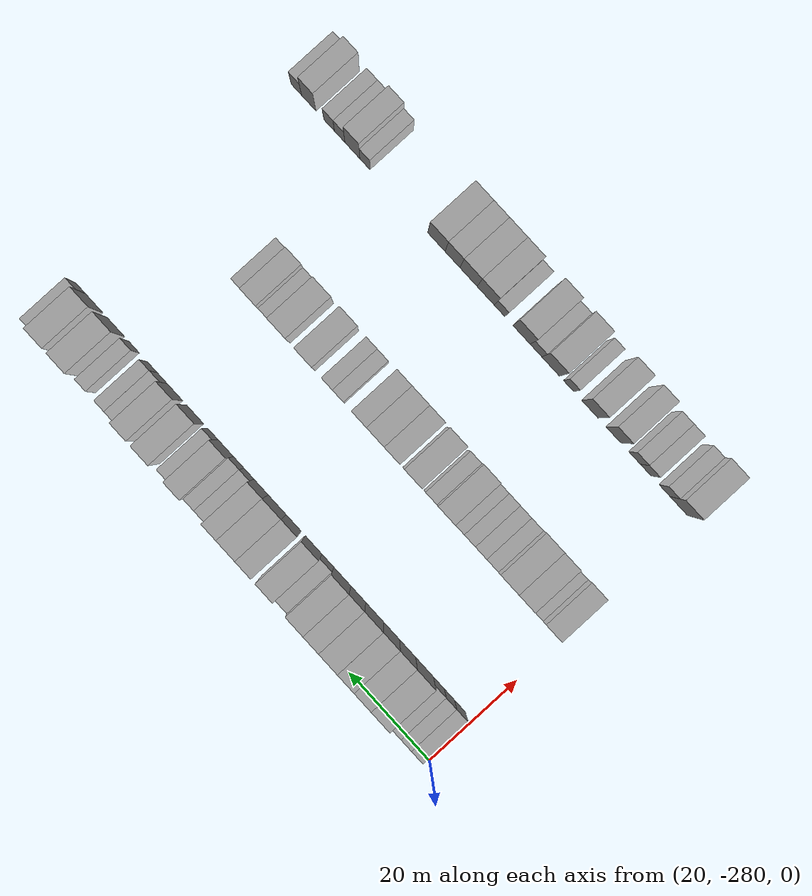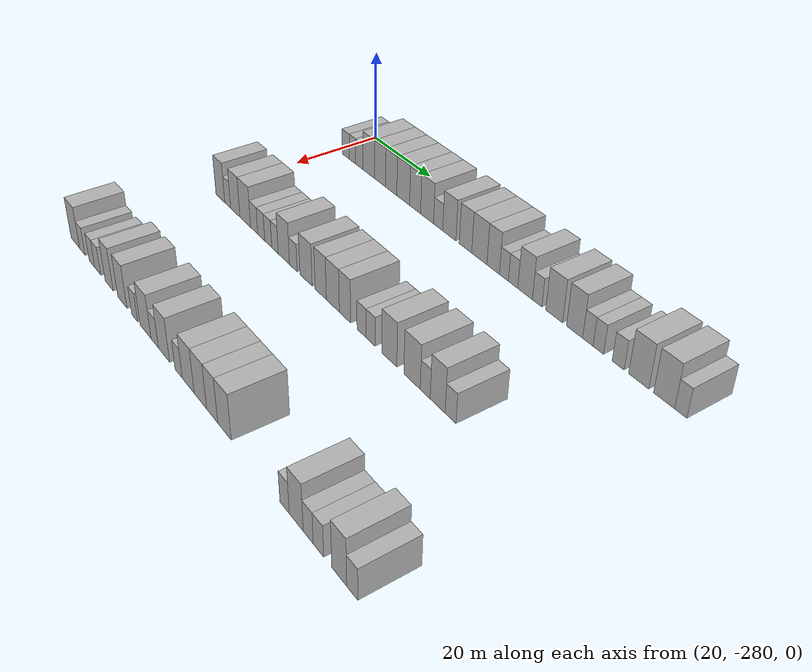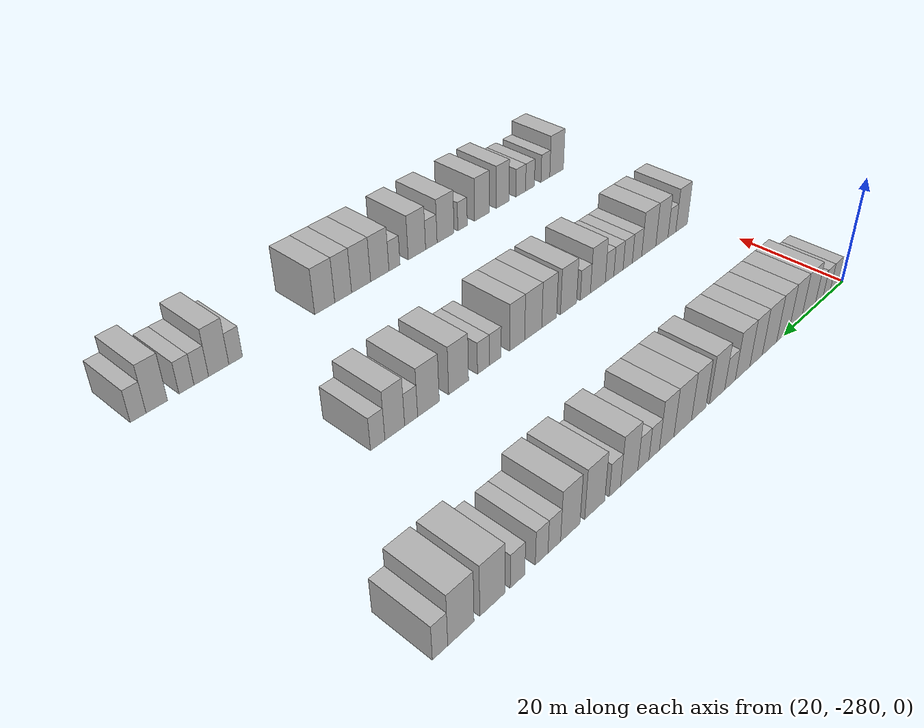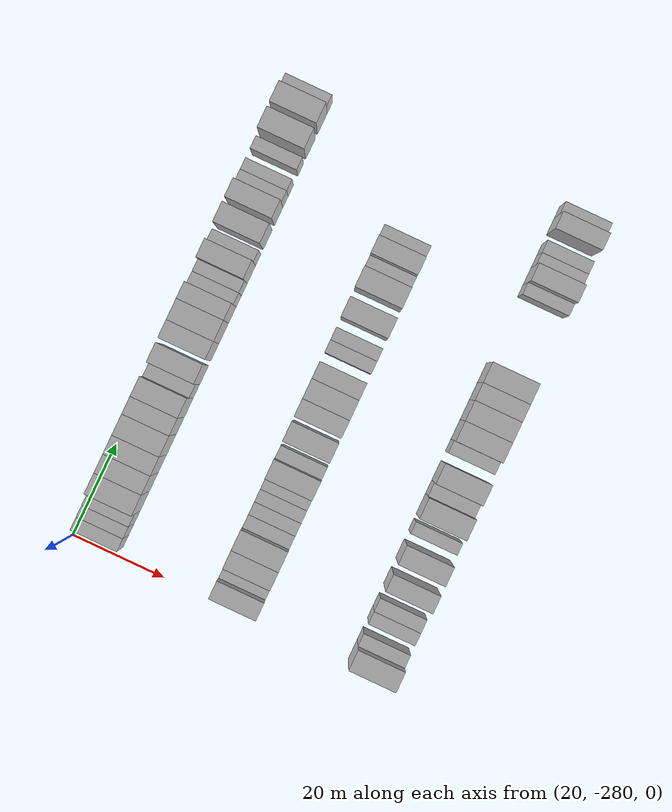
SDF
<sdf version="1.6">
 <world name="default">
  <model name="building_1">
   <static>1</static>
   <pose>25.0000 -276.6191 0 0.000000 0.000000 0.000000</pose>
   <link name="link">
    <pose>0 0 3.00 0 0 0</pose>
    <collision name="collision"><geometry><box><size>10.0000 2.7619 6.0000</size></box></geometry></collision>
    <visual name="visual">
     <cast_shadows>0</cast_shadows>
     <geometry><box><size>10.0000 2.7619 6.0000</size></box></geometry>
     <material>
      <script>
       <uri>model://HANNAS_wall/materials/scripts</uri>
       <uri>model://HANNAS_wall/materials/textures</uri>
       <name>vrc/HANNAS_wall</name>
      </script>
     </material>
    </visual>
   </link>
  </model>
  <model name="building_2">
   <static>1</static>
   <pose>25.0000 -273.9857 0 0.000000 0.000000 0.000000</pose>
   <link name="link">
    <pose>0 0 3.00 0 0 0</pose>
    <collision name="collision"><geometry><box><size>10.0000 2.5049 6.0000</size></box></geometry></collision>
    <visual name="visual">
     <cast_shadows>0</cast_shadows>
     <geometry><box><size>10.0000 2.5049 6.0000</size></box></geometry>
     <material>
      <script>
       <uri>model://HANNAS_wall/materials/scripts</uri>
       <uri>model://HANNAS_wall/materials/textures</uri>
       <name>vrc/HANNAS_wall</name>
      </script>
     </material>
    </visual>
   </link>
  </model>
  <model name="building_3">
   <static>1</static>
   <pose>25.0000 -271.3857 0 0.000000 0.000000 0.000000</pose>
   <link name="link">
    <pose>0 0 3.00 0 0 0</pose>
    <collision name="collision"><geometry><box><size>10.0000 2.6950 6.0000</size></box></geometry></collision>
    <visual name="visual">
     <cast_shadows>0</cast_shadows>
     <geometry><box><size>10.0000 2.6950 6.0000</size></box></geometry>
     <material>
      <script>
       <uri>model://HANNAS_wall/materials/scripts</uri>
       <uri>model://HANNAS_wall/materials/textures</uri>
       <name>vrc/HANNAS_wall</name>
      </script>
     </material>
    </visual>
   </link>
  </model>
  <model name="building_4">
   <static>1</static>
   <pose>25.0000 -267.8144 0 0.000000 0.000000 0.000000</pose>
   <link name="link">
    <pose>0 0 4.50 0 0 0</pose>
    <collision name="collision"><geometry><box><size>10.0000 4.4476 9.0000</size></box></geometry></collision>
    <visual name="visual">
     <cast_shadows>0</cast_shadows>
     <geometry><box><size>10.0000 4.4476 9.0000</size></box></geometry>
     <material>
      <script>
       <uri>model://HANNAS_wall/materials/scripts</uri>
       <uri>model://HANNAS_wall/materials/textures</uri>
       <name>vrc/HANNAS_wall</name>
      </script>
     </material>
    </visual>
   </link>
  </model>
  <model name="building_5">
   <static>1</static>
   <pose>25.0000 -263.5804 0 0.000000 0.000000 0.000000</pose>
   <link name="link">
    <pose>0 0 4.50 0 0 0</pose>
    <collision name="collision"><geometry><box><size>10.0000 4.0205 9.0000</size></box></geometry></collision>
    <visual name="visual">
     <cast_shadows>0</cast_shadows>
     <geometry><box><size>10.0000 4.0205 9.0000</size></box></geometry>
     <material>
      <script>
       <uri>model://HANNAS_wall/materials/scripts</uri>
       <uri>model://HANNAS_wall/materials/textures</uri>
       <name>vrc/HANNAS_wall</name>
      </script>
     </material>
    </visual>
   </link>
  </model>
  <model name="building_6">
   <static>1</static>
   <pose>25.0000 -259.5754 0 0.000000 0.000000 0.000000</pose>
   <link name="link">
    <pose>0 0 4.50 0 0 0</pose>
    <collision name="collision"><geometry><box><size>10.0000 3.9895 9.0000</size></box></geometry></collision>
    <visual name="visual">
     <cast_shadows>0</cast_shadows>
     <geometry><box><size>10.0000 3.9895 9.0000</size></box></geometry>
     <material>
      <script>
       <uri>model://HANNAS_wall/materials/scripts</uri>
       <uri>model://HANNAS_wall/materials/textures</uri>
       <name>vrc/HANNAS_wall</name>
      </script>
     </material>
    </visual>
   </link>
  </model>
  <model name="building_7">
   <static>1</static>
   <pose>25.0000 -255.3497 0 0.000000 0.000000 0.000000</pose>
   <link name="link">
    <pose>0 0 4.50 0 0 0</pose>
    <collision name="collision"><geometry><box><size>10.0000 4.4617 9.0000</size></box></geometry></collision>
    <visual name="visual">
     <cast_shadows>0</cast_shadows>
     <geometry><box><size>10.0000 4.4617 9.0000</size></box></geometry>
     <material>
      <script>
       <uri>model://HANNAS_wall/materials/scripts</uri>
       <uri>model://HANNAS_wall/materials/textures</uri>
       <name>vrc/HANNAS_wall</name>
      </script>
     </material>
    </visual>
   </link>
  </model>
  <model name="building_8">
   <static>1</static>
   <pose>25.0000 -251.2563 0 0.000000 0.000000 0.000000</pose>
   <link name="link">
    <pose>0 0 4.50 0 0 0</pose>
    <collision name="collision"><geometry><box><size>10.0000 3.7250 9.0000</size></box></geometry></collision>
    <visual name="visual">
     <cast_shadows>0</cast_shadows>
     <geometry><box><size>10.0000 3.7250 9.0000</size></box></geometry>
     <material>
      <script>
       <uri>model://HANNAS_wall/materials/scripts</uri>
       <uri>model://HANNAS_wall/materials/textures</uri>
       <name>vrc/HANNAS_wall</name>
      </script>
     </material>
    </visual>
   </link>
  </model>
  <model name="building_9">
   <static>1</static>
   <pose>25.0000 -247.2740 0 0.000000 0.000000 0.000000</pose>
   <link name="link">
    <pose>0 0 4.50 0 0 0</pose>
    <collision name="collision"><geometry><box><size>10.0000 4.2396 9.0000</size></box></geometry></collision>
    <visual name="visual">
     <cast_shadows>0</cast_shadows>
     <geometry><box><size>10.0000 4.2396 9.0000</size></box></geometry>
     <material>
      <script>
       <uri>model://HANNAS_wall/materials/scripts</uri>
       <uri>model://HANNAS_wall/materials/textures</uri>
       <name>vrc/HANNAS_wall</name>
      </script>
     </material>
    </visual>
   </link>
  </model>
  <model name="building_10">
   <static>1</static>
   <pose>25.0000 -243.6622 0 0.000000 0.000000 0.000000</pose>
   <link name="link">
    <pose>0 0 3.00 0 0 0</pose>
    <collision name="collision"><geometry><box><size>10.0000 2.9841 6.0000</size></box></geometry></collision>
    <visual name="visual">
     <cast_shadows>0</cast_shadows>
     <geometry><box><size>10.0000 2.9841 6.0000</size></box></geometry>
     <material>
      <script>
       <uri>model://HANNAS_wall/materials/scripts</uri>
       <uri>model://HANNAS_wall/materials/textures</uri>
       <name>vrc/HANNAS_wall</name>
      </script>
     </material>
    </visual>
   </link>
  </model>
  <model name="building_11">
   <static>1</static>
   <pose>25.0000 -240.0857 0 0.000000 0.000000 0.000000</pose>
   <link name="link">
    <pose>0 0 4.50 0 0 0</pose>
    <collision name="collision"><geometry><box><size>10.0000 4.1688 9.0000</size></box></geometry></collision>
    <visual name="visual">
     <cast_shadows>0</cast_shadows>
     <geometry><box><size>10.0000 4.1688 9.0000</size></box></geometry>
     <material>
      <script>
       <uri>model://HANNAS_wall/materials/scripts</uri>
       <uri>model://HANNAS_wall/materials/textures</uri>
       <name>vrc/HANNAS_wall</name>
      </script>
     </material>
    </visual>
   </link>
  </model>
  <model name="building_12">
   <static>1</static>
   <pose>25.0000 -235.0890 0 0.000000 0.000000 0.000000</pose>
   <link name="link">
    <pose>0 0 4.50 0 0 0</pose>
    <collision name="collision"><geometry><box><size>10.0000 3.8247 9.0000</size></box></geometry></collision>
    <visual name="visual">
     <cast_shadows>0</cast_shadows>
     <geometry><box><size>10.0000 3.8247 9.0000</size></box></geometry>
     <material>
      <script>
       <uri>model://HANNAS_wall/materials/scripts</uri>
       <uri>model://HANNAS_wall/materials/textures</uri>
       <name>vrc/HANNAS_wall</name>
      </script>
     </material>
    </visual>
   </link>
  </model>
  <model name="building_13">
   <static>1</static>
   <pose>25.0000 -230.9289 0 0.000000 0.000000 0.000000</pose>
   <link name="link">
    <pose>0 0 4.50 0 0 0</pose>
    <collision name="collision"><geometry><box><size>10.0000 4.4953 9.0000</size></box></geometry></collision>
    <visual name="visual">
     <cast_shadows>0</cast_shadows>
     <geometry><box><size>10.0000 4.4953 9.0000</size></box></geometry>
     <material>
      <script>
       <uri>model://HANNAS_wall/materials/scripts</uri>
       <uri>model://HANNAS_wall/materials/textures</uri>
       <name>vrc/HANNAS_wall</name>
      </script>
     </material>
    </visual>
   </link>
  </model>
  <model name="building_14">
   <static>1</static>
   <pose>25.0000 -226.8792 0 0.000000 0.000000 0.000000</pose>
   <link name="link">
    <pose>0 0 4.50 0 0 0</pose>
    <collision name="collision"><geometry><box><size>10.0000 3.6042 9.0000</size></box></geometry></collision>
    <visual name="visual">
     <cast_shadows>0</cast_shadows>
     <geometry><box><size>10.0000 3.6042 9.0000</size></box></geometry>
     <material>
      <script>
       <uri>model://HANNAS_wall/materials/scripts</uri>
       <uri>model://HANNAS_wall/materials/textures</uri>
       <name>vrc/HANNAS_wall</name>
      </script>
     </material>
    </visual>
   </link>
  </model>
  <model name="building_15">
   <static>1</static>
   <pose>25.0000 -223.8121 0 0.000000 0.000000 0.000000</pose>
   <link name="link">
    <pose>0 0 3.00 0 0 0</pose>
    <collision name="collision"><geometry><box><size>10.0000 2.5299 6.0000</size></box></geometry></collision>
    <visual name="visual">
     <cast_shadows>0</cast_shadows>
     <geometry><box><size>10.0000 2.5299 6.0000</size></box></geometry>
     <material>
      <script>
       <uri>model://HANNAS_wall/materials/scripts</uri>
       <uri>model://HANNAS_wall/materials/textures</uri>
       <name>vrc/HANNAS_wall</name>
      </script>
     </material>
    </visual>
   </link>
  </model>
  <model name="building_16">
   <static>1</static>
   <pose>25.0000 -221.2424 0 0.000000 0.000000 0.000000</pose>
   <link name="link">
    <pose>0 0 3.00 0 0 0</pose>
    <collision name="collision"><geometry><box><size>10.0000 2.6094 6.0000</size></box></geometry></collision>
    <visual name="visual">
     <cast_shadows>0</cast_shadows>
     <geometry><box><size>10.0000 2.6094 6.0000</size></box></geometry>
     <material>
      <script>
       <uri>model://HANNAS_wall/materials/scripts</uri>
       <uri>model://HANNAS_wall/materials/textures</uri>
       <name>vrc/HANNAS_wall</name>
      </script>
     </material>
    </visual>
   </link>
  </model>
  <model name="building_17">
   <static>1</static>
   <pose>25.0000 -217.9524 0 0.000000 0.000000 0.000000</pose>
   <link name="link">
    <pose>0 0 4.50 0 0 0</pose>
    <collision name="collision"><geometry><box><size>10.0000 3.9706 9.0000</size></box></geometry></collision>
    <visual name="visual">
     <cast_shadows>0</cast_shadows>
     <geometry><box><size>10.0000 3.9706 9.0000</size></box></geometry>
     <material>
      <script>
       <uri>model://HANNAS_wall/materials/scripts</uri>
       <uri>model://HANNAS_wall/materials/textures</uri>
       <name>vrc/HANNAS_wall</name>
      </script>
     </material>
    </visual>
   </link>
  </model>
  <model name="building_18">
   <static>1</static>
   <pose>25.0000 -214.6988 0 0.000000 0.000000 0.000000</pose>
   <link name="link">
    <pose>0 0 3.00 0 0 0</pose>
    <collision name="collision"><geometry><box><size>10.0000 2.5365 6.0000</size></box></geometry></collision>
    <visual name="visual">
     <cast_shadows>0</cast_shadows>
     <geometry><box><size>10.0000 2.5365 6.0000</size></box></geometry>
     <material>
      <script>
       <uri>model://HANNAS_wall/materials/scripts</uri>
       <uri>model://HANNAS_wall/materials/textures</uri>
       <name>vrc/HANNAS_wall</name>
      </script>
     </material>
    </visual>
   </link>
  </model>
  <model name="building_19">
   <static>1</static>
   <pose>25.0000 -210.2772 0 0.000000 0.000000 0.000000</pose>
   <link name="link">
    <pose>0 0 4.50 0 0 0</pose>
    <collision name="collision"><geometry><box><size>10.0000 4.3068 9.0000</size></box></geometry></collision>
    <visual name="visual">
     <cast_shadows>0</cast_shadows>
     <geometry><box><size>10.0000 4.3068 9.0000</size></box></geometry>
     <material>
      <script>
       <uri>model://HANNAS_wall/materials/scripts</uri>
       <uri>model://HANNAS_wall/materials/textures</uri>
       <name>vrc/HANNAS_wall</name>
      </script>
     </material>
    </visual>
   </link>
  </model>
  <model name="building_20">
   <static>1</static>
   <pose>25.0000 -205.1337 0 0.000000 0.000000 0.000000</pose>
   <link name="link">
    <pose>0 0 4.50 0 0 0</pose>
    <collision name="collision"><geometry><box><size>10.0000 3.9800 9.0000</size></box></geometry></collision>
    <visual name="visual">
     <cast_shadows>0</cast_shadows>
     <geometry><box><size>10.0000 3.9800 9.0000</size></box></geometry>
     <material>
      <script>
       <uri>model://HANNAS_wall/materials/scripts</uri>
       <uri>model://HANNAS_wall/materials/textures</uri>
       <name>vrc/HANNAS_wall</name>
      </script>
     </material>
    </visual>
   </link>
  </model>
  <model name="building_21">
   <static>1</static>
   <pose>25.0000 -201.8818 0 0.000000 0.000000 0.000000</pose>
   <link name="link">
    <pose>0 0 3.00 0 0 0</pose>
    <collision name="collision"><geometry><box><size>10.0000 2.5238 6.0000</size></box></geometry></collision>
    <visual name="visual">
     <cast_shadows>0</cast_shadows>
     <geometry><box><size>10.0000 2.5238 6.0000</size></box></geometry>
     <material>
      <script>
       <uri>model://HANNAS_wall/materials/scripts</uri>
       <uri>model://HANNAS_wall/materials/textures</uri>
       <name>vrc/HANNAS_wall</name>
      </script>
     </material>
    </visual>
   </link>
  </model>
  <model name="building_22">
   <static>1</static>
   <pose>25.0000 -199.3807 0 0.000000 0.000000 0.000000</pose>
   <link name="link">
    <pose>0 0 3.00 0 0 0</pose>
    <collision name="collision"><geometry><box><size>10.0000 2.4783 6.0000</size></box></geometry></collision>
    <visual name="visual">
     <cast_shadows>0</cast_shadows>
     <geometry><box><size>10.0000 2.4783 6.0000</size></box></geometry>
     <material>
      <script>
       <uri>model://HANNAS_wall/materials/scripts</uri>
       <uri>model://HANNAS_wall/materials/textures</uri>
       <name>vrc/HANNAS_wall</name>
      </script>
     </material>
    </visual>
   </link>
  </model>
  <model name="building_23">
   <static>1</static>
   <pose>25.0000 -194.7735 0 0.000000 0.000000 0.000000</pose>
   <link name="link">
    <pose>0 0 3.00 0 0 0</pose>
    <collision name="collision"><geometry><box><size>10.0000 2.7361 6.0000</size></box></geometry></collision>
    <visual name="visual">
     <cast_shadows>0</cast_shadows>
     <geometry><box><size>10.0000 2.7361 6.0000</size></box></geometry>
     <material>
      <script>
       <uri>model://HANNAS_wall/materials/scripts</uri>
       <uri>model://HANNAS_wall/materials/textures</uri>
       <name>vrc/HANNAS_wall</name>
      </script>
     </material>
    </visual>
   </link>
  </model>
  <model name="building_24">
   <static>1</static>
   <pose>25.0000 -190.1663 0 0.000000 0.000000 0.000000</pose>
   <link name="link">
    <pose>0 0 4.50 0 0 0</pose>
    <collision name="collision"><geometry><box><size>10.0000 4.4783 9.0000</size></box></geometry></collision>
    <visual name="visual">
     <cast_shadows>0</cast_shadows>
     <geometry><box><size>10.0000 4.4783 9.0000</size></box></geometry>
     <material>
      <script>
       <uri>model://HANNAS_wall/materials/scripts</uri>
       <uri>model://HANNAS_wall/materials/textures</uri>
       <name>vrc/HANNAS_wall</name>
      </script>
     </material>
    </visual>
   </link>
  </model>
  <model name="building_25">
   <static>1</static>
   <pose>25.0000 -184.7022 0 0.000000 0.000000 0.000000</pose>
   <link name="link">
    <pose>0 0 4.50 0 0 0</pose>
    <collision name="collision"><geometry><box><size>10.0000 4.4500 9.0000</size></box></geometry></collision>
    <visual name="visual">
     <cast_shadows>0</cast_shadows>
     <geometry><box><size>10.0000 4.4500 9.0000</size></box></geometry>
     <material>
      <script>
       <uri>model://HANNAS_wall/materials/scripts</uri>
       <uri>model://HANNAS_wall/materials/textures</uri>
       <name>vrc/HANNAS_wall</name>
      </script>
     </material>
    </visual>
   </link>
  </model>
  <model name="building_26">
   <static>1</static>
   <pose>25.0000 -181.2104 0 0.000000 0.000000 0.000000</pose>
   <link name="link">
    <pose>0 0 3.00 0 0 0</pose>
    <collision name="collision"><geometry><box><size>10.0000 2.5336 6.0000</size></box></geometry></collision>
    <visual name="visual">
     <cast_shadows>0</cast_shadows>
     <geometry><box><size>10.0000 2.5336 6.0000</size></box></geometry>
     <material>
      <script>
       <uri>model://HANNAS_wall/materials/scripts</uri>
       <uri>model://HANNAS_wall/materials/textures</uri>
       <name>vrc/HANNAS_wall</name>
      </script>
     </material>
    </visual>
   </link>
  </model>
  <model name="building_139">
   <static>1</static>
   <pose>55.0000 -276.0999 0 0.000000 0.000000 0.000000</pose>
   <link name="link">
    <pose>0 0 4.50 0 0 0</pose>
    <collision name="collision"><geometry><box><size>10.0000 3.8002 9.0000</size></box></geometry></collision>
    <visual name="visual">
     <cast_shadows>0</cast_shadows>
     <geometry><box><size>10.0000 3.8002 9.0000</size></box></geometry>
     <material>
      <script>
       <uri>model://HANNAS_wall/materials/scripts</uri>
       <uri>model://HANNAS_wall/materials/textures</uri>
       <name>vrc/HANNAS_wall</name>
      </script>
     </material>
    </visual>
   </link>
  </model>
  <model name="building_140">
   <static>1</static>
   <pose>55.0000 -272.9406 0 0.000000 0.000000 0.000000</pose>
   <link name="link">
    <pose>0 0 3.00 0 0 0</pose>
    <collision name="collision"><geometry><box><size>10.0000 2.5184 6.0000</size></box></geometry></collision>
    <visual name="visual">
     <cast_shadows>0</cast_shadows>
     <geometry><box><size>10.0000 2.5184 6.0000</size></box></geometry>
     <material>
      <script>
       <uri>model://HANNAS_wall/materials/scripts</uri>
       <uri>model://HANNAS_wall/materials/textures</uri>
       <name>vrc/HANNAS_wall</name>
      </script>
     </material>
    </visual>
   </link>
  </model>
  <model name="building_141">
   <static>1</static>
   <pose>55.0000 -269.7502 0 0.000000 0.000000 0.000000</pose>
   <link name="link">
    <pose>0 0 4.50 0 0 0</pose>
    <collision name="collision"><geometry><box><size>10.0000 3.8624 9.0000</size></box></geometry></collision>
    <visual name="visual">
     <cast_shadows>0</cast_shadows>
     <geometry><box><size>10.0000 3.8624 9.0000</size></box></geometry>
     <material>
      <script>
       <uri>model://HANNAS_wall/materials/scripts</uri>
       <uri>model://HANNAS_wall/materials/textures</uri>
       <name>vrc/HANNAS_wall</name>
      </script>
     </material>
    </visual>
   </link>
  </model>
  <model name="building_142">
   <static>1</static>
   <pose>55.0000 -265.6388 0 0.000000 0.000000 0.000000</pose>
   <link name="link">
    <pose>0 0 4.50 0 0 0</pose>
    <collision name="collision"><geometry><box><size>10.0000 4.3603 9.0000</size></box></geometry></collision>
    <visual name="visual">
     <cast_shadows>0</cast_shadows>
     <geometry><box><size>10.0000 4.3603 9.0000</size></box></geometry>
     <material>
      <script>
       <uri>model://HANNAS_wall/materials/scripts</uri>
       <uri>model://HANNAS_wall/materials/textures</uri>
       <name>vrc/HANNAS_wall</name>
      </script>
     </material>
    </visual>
   </link>
  </model>
  <model name="building_143">
   <static>1</static>
   <pose>55.0000 -262.0458 0 0.000000 0.000000 0.000000</pose>
   <link name="link">
    <pose>0 0 3.00 0 0 0</pose>
    <collision name="collision"><geometry><box><size>10.0000 2.8257 6.0000</size></box></geometry></collision>
    <visual name="visual">
     <cast_shadows>0</cast_shadows>
     <geometry><box><size>10.0000 2.8257 6.0000</size></box></geometry>
     <material>
      <script>
       <uri>model://HANNAS_wall/materials/scripts</uri>
       <uri>model://HANNAS_wall/materials/textures</uri>
       <name>vrc/HANNAS_wall</name>
      </script>
     </material>
    </visual>
   </link>
  </model>
  <model name="building_144">
   <static>1</static>
   <pose>55.0000 -259.2660 0 0.000000 0.000000 0.000000</pose>
   <link name="link">
    <pose>0 0 3.00 0 0 0</pose>
    <collision name="collision"><geometry><box><size>10.0000 2.7339 6.0000</size></box></geometry></collision>
    <visual name="visual">
     <cast_shadows>0</cast_shadows>
     <geometry><box><size>10.0000 2.7339 6.0000</size></box></geometry>
     <material>
      <script>
       <uri>model://HANNAS_wall/materials/scripts</uri>
       <uri>model://HANNAS_wall/materials/textures</uri>
       <name>vrc/HANNAS_wall</name>
      </script>
     </material>
    </visual>
   </link>
  </model>
  <model name="building_145">
   <static>1</static>
   <pose>55.0000 -256.5520 0 0.000000 0.000000 0.000000</pose>
   <link name="link">
    <pose>0 0 3.00 0 0 0</pose>
    <collision name="collision"><geometry><box><size>10.0000 2.6941 6.0000</size></box></geometry></collision>
    <visual name="visual">
     <cast_shadows>0</cast_shadows>
     <geometry><box><size>10.0000 2.6941 6.0000</size></box></geometry>
     <material>
      <script>
       <uri>model://HANNAS_wall/materials/scripts</uri>
       <uri>model://HANNAS_wall/materials/textures</uri>
       <name>vrc/HANNAS_wall</name>
      </script>
     </material>
    </visual>
   </link>
  </model>
  <model name="building_146">
   <static>1</static>
   <pose>55.0000 -253.9831 0 0.000000 0.000000 0.000000</pose>
   <link name="link">
    <pose>0 0 3.00 0 0 0</pose>
    <collision name="collision"><geometry><box><size>10.0000 2.4437 6.0000</size></box></geometry></collision>
    <visual name="visual">
     <cast_shadows>0</cast_shadows>
     <geometry><box><size>10.0000 2.4437 6.0000</size></box></geometry>
     <material>
      <script>
       <uri>model://HANNAS_wall/materials/scripts</uri>
       <uri>model://HANNAS_wall/materials/textures</uri>
       <name>vrc/HANNAS_wall</name>
      </script>
     </material>
    </visual>
   </link>
  </model>
  <model name="building_147">
   <static>1</static>
   <pose>55.0000 -250.6899 0 0.000000 0.000000 0.000000</pose>
   <link name="link">
    <pose>0 0 4.50 0 0 0</pose>
    <collision name="collision"><geometry><box><size>10.0000 4.1426 9.0000</size></box></geometry></collision>
    <visual name="visual">
     <cast_shadows>0</cast_shadows>
     <geometry><box><size>10.0000 4.1426 9.0000</size></box></geometry>
     <material>
      <script>
       <uri>model://HANNAS_wall/materials/scripts</uri>
       <uri>model://HANNAS_wall/materials/textures</uri>
       <name>vrc/HANNAS_wall</name>
      </script>
     </material>
    </visual>
   </link>
  </model>
  <model name="building_148">
   <static>1</static>
   <pose>55.0000 -247.2332 0 0.000000 0.000000 0.000000</pose>
   <link name="link">
    <pose>0 0 3.00 0 0 0</pose>
    <collision name="collision"><geometry><box><size>10.0000 2.7710 6.0000</size></box></geometry></collision>
    <visual name="visual">
     <cast_shadows>0</cast_shadows>
     <geometry><box><size>10.0000 2.7710 6.0000</size></box></geometry>
     <material>
      <script>
       <uri>model://HANNAS_wall/materials/scripts</uri>
       <uri>model://HANNAS_wall/materials/textures</uri>
       <name>vrc/HANNAS_wall</name>
      </script>
     </material>
    </visual>
   </link>
  </model>
  <model name="building_149">
   <static>1</static>
   <pose>55.0000 -242.7123 0 0.000000 0.000000 0.000000</pose>
   <link name="link">
    <pose>0 0 4.50 0 0 0</pose>
    <collision name="collision"><geometry><box><size>10.0000 4.2707 9.0000</size></box></geometry></collision>
    <visual name="visual">
     <cast_shadows>0</cast_shadows>
     <geometry><box><size>10.0000 4.2707 9.0000</size></box></geometry>
     <material>
      <script>
       <uri>model://HANNAS_wall/materials/scripts</uri>
       <uri>model://HANNAS_wall/materials/textures</uri>
       <name>vrc/HANNAS_wall</name>
      </script>
     </material>
    </visual>
   </link>
  </model>
  <model name="building_150">
   <static>1</static>
   <pose>55.0000 -237.6857 0 0.000000 0.000000 0.000000</pose>
   <link name="link">
    <pose>0 0 4.50 0 0 0</pose>
    <collision name="collision"><geometry><box><size>10.0000 3.7826 9.0000</size></box></geometry></collision>
    <visual name="visual">
     <cast_shadows>0</cast_shadows>
     <geometry><box><size>10.0000 3.7826 9.0000</size></box></geometry>
     <material>
      <script>
       <uri>model://HANNAS_wall/materials/scripts</uri>
       <uri>model://HANNAS_wall/materials/textures</uri>
       <name>vrc/HANNAS_wall</name>
      </script>
     </material>
    </visual>
   </link>
  </model>
  <model name="building_151">
   <static>1</static>
   <pose>55.0000 -233.6688 0 0.000000 0.000000 0.000000</pose>
   <link name="link">
    <pose>0 0 4.50 0 0 0</pose>
    <collision name="collision"><geometry><box><size>10.0000 4.2512 9.0000</size></box></geometry></collision>
    <visual name="visual">
     <cast_shadows>0</cast_shadows>
     <geometry><box><size>10.0000 4.2512 9.0000</size></box></geometry>
     <material>
      <script>
       <uri>model://HANNAS_wall/materials/scripts</uri>
       <uri>model://HANNAS_wall/materials/textures</uri>
       <name>vrc/HANNAS_wall</name>
      </script>
     </material>
    </visual>
   </link>
  </model>
  <model name="building_152">
   <static>1</static>
   <pose>55.0000 -229.7374 0 0.000000 0.000000 0.000000</pose>
   <link name="link">
    <pose>0 0 4.50 0 0 0</pose>
    <collision name="collision"><geometry><box><size>10.0000 3.6117 9.0000</size></box></geometry></collision>
    <visual name="visual">
     <cast_shadows>0</cast_shadows>
     <geometry><box><size>10.0000 3.6117 9.0000</size></box></geometry>
     <material>
      <script>
       <uri>model://HANNAS_wall/materials/scripts</uri>
       <uri>model://HANNAS_wall/materials/textures</uri>
       <name>vrc/HANNAS_wall</name>
      </script>
     </material>
    </visual>
   </link>
  </model>
  <model name="building_153">
   <static>1</static>
   <pose>55.0000 -224.5654 0 0.000000 0.000000 0.000000</pose>
   <link name="link">
    <pose>0 0 3.00 0 0 0</pose>
    <collision name="collision"><geometry><box><size>10.0000 2.7323 6.0000</size></box></geometry></collision>
    <visual name="visual">
     <cast_shadows>0</cast_shadows>
     <geometry><box><size>10.0000 2.7323 6.0000</size></box></geometry>
     <material>
      <script>
       <uri>model://HANNAS_wall/materials/scripts</uri>
       <uri>model://HANNAS_wall/materials/textures</uri>
       <name>vrc/HANNAS_wall</name>
      </script>
     </material>
    </visual>
   </link>
  </model>
  <model name="building_154">
   <static>1</static>
   <pose>55.0000 -221.8441 0 0.000000 0.000000 0.000000</pose>
   <link name="link">
    <pose>0 0 3.00 0 0 0</pose>
    <collision name="collision"><geometry><box><size>10.0000 2.7103 6.0000</size></box></geometry></collision>
    <visual name="visual">
     <cast_shadows>0</cast_shadows>
     <geometry><box><size>10.0000 2.7103 6.0000</size></box></geometry>
     <material>
      <script>
       <uri>model://HANNAS_wall/materials/scripts</uri>
       <uri>model://HANNAS_wall/materials/textures</uri>
       <name>vrc/HANNAS_wall</name>
      </script>
     </material>
    </visual>
   </link>
  </model>
  <model name="building_155">
   <static>1</static>
   <pose>55.0000 -216.3254 0 0.000000 0.000000 0.000000</pose>
   <link name="link">
    <pose>0 0 4.50 0 0 0</pose>
    <collision name="collision"><geometry><box><size>10.0000 4.3272 9.0000</size></box></geometry></collision>
    <visual name="visual">
     <cast_shadows>0</cast_shadows>
     <geometry><box><size>10.0000 4.3272 9.0000</size></box></geometry>
     <material>
      <script>
       <uri>model://HANNAS_wall/materials/scripts</uri>
       <uri>model://HANNAS_wall/materials/textures</uri>
       <name>vrc/HANNAS_wall</name>
      </script>
     </material>
    </visual>
   </link>
  </model>
  <model name="building_156">
   <static>1</static>
   <pose>55.0000 -209.9163 0 0.000000 0.000000 0.000000</pose>
   <link name="link">
    <pose>0 0 4.50 0 0 0</pose>
    <collision name="collision"><geometry><box><size>10.0000 4.4911 9.0000</size></box></geometry></collision>
    <visual name="visual">
     <cast_shadows>0</cast_shadows>
     <geometry><box><size>10.0000 4.4911 9.0000</size></box></geometry>
     <material>
      <script>
       <uri>model://HANNAS_wall/materials/scripts</uri>
       <uri>model://HANNAS_wall/materials/textures</uri>
       <name>vrc/HANNAS_wall</name>
      </script>
     </material>
    </visual>
   </link>
  </model>
  <model name="building_157">
   <static>1</static>
   <pose>55.0000 -206.3631 0 0.000000 0.000000 0.000000</pose>
   <link name="link">
    <pose>0 0 3.00 0 0 0</pose>
    <collision name="collision"><geometry><box><size>10.0000 2.6152 6.0000</size></box></geometry></collision>
    <visual name="visual">
     <cast_shadows>0</cast_shadows>
     <geometry><box><size>10.0000 2.6152 6.0000</size></box></geometry>
     <material>
      <script>
       <uri>model://HANNAS_wall/materials/scripts</uri>
       <uri>model://HANNAS_wall/materials/textures</uri>
       <name>vrc/HANNAS_wall</name>
      </script>
     </material>
    </visual>
   </link>
  </model>
  <model name="building_158">
   <static>1</static>
   <pose>55.0000 -203.1133 0 0.000000 0.000000 0.000000</pose>
   <link name="link">
    <pose>0 0 4.50 0 0 0</pose>
    <collision name="collision"><geometry><box><size>10.0000 3.8844 9.0000</size></box></geometry></collision>
    <visual name="visual">
     <cast_shadows>0</cast_shadows>
     <geometry><box><size>10.0000 3.8844 9.0000</size></box></geometry>
     <material>
      <script>
       <uri>model://HANNAS_wall/materials/scripts</uri>
       <uri>model://HANNAS_wall/materials/textures</uri>
       <name>vrc/HANNAS_wall</name>
      </script>
     </material>
    </visual>
   </link>
  </model>
  <model name="building_159">
   <static>1</static>
   <pose>55.0000 -199.7886 0 0.000000 0.000000 0.000000</pose>
   <link name="link">
    <pose>0 0 3.00 0 0 0</pose>
    <collision name="collision"><geometry><box><size>10.0000 2.7651 6.0000</size></box></geometry></collision>
    <visual name="visual">
     <cast_shadows>0</cast_shadows>
     <geometry><box><size>10.0000 2.7651 6.0000</size></box></geometry>
     <material>
      <script>
       <uri>model://HANNAS_wall/materials/scripts</uri>
       <uri>model://HANNAS_wall/materials/textures</uri>
       <name>vrc/HANNAS_wall</name>
      </script>
     </material>
    </visual>
   </link>
  </model>
  <model name="building_281">
   <static>1</static>
   <pose>85.0000 -276.8420 0 0.000000 0.000000 0.000000</pose>
   <link name="link">
    <pose>0 0 4.50 0 0 0</pose>
    <collision name="collision"><geometry><box><size>10.0000 4.3161 9.0000</size></box></geometry></collision>
    <visual name="visual">
     <cast_shadows>0</cast_shadows>
     <geometry><box><size>10.0000 4.3161 9.0000</size></box></geometry>
     <material>
      <script>
       <uri>model://HANNAS_wall/materials/scripts</uri>
       <uri>model://HANNAS_wall/materials/textures</uri>
       <name>vrc/HANNAS_wall</name>
      </script>
     </material>
    </visual>
   </link>
  </model>
  <model name="building_282">
   <static>1</static>
   <pose>85.0000 -273.3186 0 0.000000 0.000000 0.000000</pose>
   <link name="link">
    <pose>0 0 3.00 0 0 0</pose>
    <collision name="collision"><geometry><box><size>10.0000 2.7306 6.0000</size></box></geometry></collision>
    <visual name="visual">
     <cast_shadows>0</cast_shadows>
     <geometry><box><size>10.0000 2.7306 6.0000</size></box></geometry>
     <material>
      <script>
       <uri>model://HANNAS_wall/materials/scripts</uri>
       <uri>model://HANNAS_wall/materials/textures</uri>
       <name>vrc/HANNAS_wall</name>
      </script>
     </material>
    </visual>
   </link>
  </model>
  <model name="building_283">
   <static>1</static>
   <pose>85.0000 -268.6163 0 0.000000 0.000000 0.000000</pose>
   <link name="link">
    <pose>0 0 3.00 0 0 0</pose>
    <collision name="collision"><geometry><box><size>10.0000 2.6741 6.0000</size></box></geometry></collision>
    <visual name="visual">
     <cast_shadows>0</cast_shadows>
     <geometry><box><size>10.0000 2.6741 6.0000</size></box></geometry>
     <material>
      <script>
       <uri>model://HANNAS_wall/materials/scripts</uri>
       <uri>model://HANNAS_wall/materials/textures</uri>
       <name>vrc/HANNAS_wall</name>
      </script>
     </material>
    </visual>
   </link>
  </model>
  <model name="building_284">
   <static>1</static>
   <pose>85.0000 -265.8492 0 0.000000 0.000000 0.000000</pose>
   <link name="link">
    <pose>0 0 3.00 0 0 0</pose>
    <collision name="collision"><geometry><box><size>10.0000 2.8601 6.0000</size></box></geometry></collision>
    <visual name="visual">
     <cast_shadows>0</cast_shadows>
     <geometry><box><size>10.0000 2.8601 6.0000</size></box></geometry>
     <material>
      <script>
       <uri>model://HANNAS_wall/materials/scripts</uri>
       <uri>model://HANNAS_wall/materials/textures</uri>
       <name>vrc/HANNAS_wall</name>
      </script>
     </material>
    </visual>
   </link>
  </model>
  <model name="building_285">
   <static>1</static>
   <pose>85.0000 -260.5760 0 0.000000 0.000000 0.000000</pose>
   <link name="link">
    <pose>0 0 4.50 0 0 0</pose>
    <collision name="collision"><geometry><box><size>10.0000 3.6863 9.0000</size></box></geometry></collision>
    <visual name="visual">
     <cast_shadows>0</cast_shadows>
     <geometry><box><size>10.0000 3.6863 9.0000</size></box></geometry>
     <material>
      <script>
       <uri>model://HANNAS_wall/materials/scripts</uri>
       <uri>model://HANNAS_wall/materials/textures</uri>
       <name>vrc/HANNAS_wall</name>
      </script>
     </material>
    </visual>
   </link>
  </model>
  <model name="building_286">
   <static>1</static>
   <pose>85.0000 -254.6927 0 0.000000 0.000000 0.000000</pose>
   <link name="link">
    <pose>0 0 4.50 0 0 0</pose>
    <collision name="collision"><geometry><box><size>10.0000 4.0802 9.0000</size></box></geometry></collision>
    <visual name="visual">
     <cast_shadows>0</cast_shadows>
     <geometry><box><size>10.0000 4.0802 9.0000</size></box></geometry>
     <material>
      <script>
       <uri>model://HANNAS_wall/materials/scripts</uri>
       <uri>model://HANNAS_wall/materials/textures</uri>
       <name>vrc/HANNAS_wall</name>
      </script>
     </material>
    </visual>
   </link>
  </model>
  <model name="building_287">
   <static>1</static>
   <pose>85.0000 -249.3838 0 0.000000 0.000000 0.000000</pose>
   <link name="link">
    <pose>0 0 3.00 0 0 0</pose>
    <collision name="collision"><geometry><box><size>10.0000 2.5378 6.0000</size></box></geometry></collision>
    <visual name="visual">
     <cast_shadows>0</cast_shadows>
     <geometry><box><size>10.0000 2.5378 6.0000</size></box></geometry>
     <material>
      <script>
       <uri>model://HANNAS_wall/materials/scripts</uri>
       <uri>model://HANNAS_wall/materials/textures</uri>
       <name>vrc/HANNAS_wall</name>
      </script>
     </material>
    </visual>
   </link>
  </model>
  <model name="building_288">
   <static>1</static>
   <pose>85.0000 -244.8973 0 0.000000 0.000000 0.000000</pose>
   <link name="link">
    <pose>0 0 4.50 0 0 0</pose>
    <collision name="collision"><geometry><box><size>10.0000 4.4352 9.0000</size></box></geometry></collision>
    <visual name="visual">
     <cast_shadows>0</cast_shadows>
     <geometry><box><size>10.0000 4.4352 9.0000</size></box></geometry>
     <material>
      <script>
       <uri>model://HANNAS_wall/materials/scripts</uri>
       <uri>model://HANNAS_wall/materials/textures</uri>
       <name>vrc/HANNAS_wall</name>
      </script>
     </material>
    </visual>
   </link>
  </model>
  <model name="building_289">
   <static>1</static>
   <pose>85.0000 -241.2138 0 0.000000 0.000000 0.000000</pose>
   <link name="link">
    <pose>0 0 3.00 0 0 0</pose>
    <collision name="collision"><geometry><box><size>10.0000 2.9317 6.0000</size></box></geometry></collision>
    <visual name="visual">
     <cast_shadows>0</cast_shadows>
     <geometry><box><size>10.0000 2.9317 6.0000</size></box></geometry>
     <material>
      <script>
       <uri>model://HANNAS_wall/materials/scripts</uri>
       <uri>model://HANNAS_wall/materials/textures</uri>
       <name>vrc/HANNAS_wall</name>
      </script>
     </material>
    </visual>
   </link>
  </model>
  <model name="building_290">
   <static>1</static>
   <pose>85.0000 -237.5802 0 0.000000 0.000000 0.000000</pose>
   <link name="link">
    <pose>0 0 4.50 0 0 0</pose>
    <collision name="collision"><geometry><box><size>10.0000 4.3356 9.0000</size></box></geometry></collision>
    <visual name="visual">
     <cast_shadows>0</cast_shadows>
     <geometry><box><size>10.0000 4.3356 9.0000</size></box></geometry>
     <material>
      <script>
       <uri>model://HANNAS_wall/materials/scripts</uri>
       <uri>model://HANNAS_wall/materials/textures</uri>
       <name>vrc/HANNAS_wall</name>
      </script>
     </material>
    </visual>
   </link>
  </model>
  <model name="building_291">
   <static>1</static>
   <pose>85.0000 -232.0772 0 0.000000 0.000000 0.000000</pose>
   <link name="link">
    <pose>0 0 3.00 0 0 0</pose>
    <collision name="collision"><geometry><box><size>10.0000 2.6704 6.0000</size></box></geometry></collision>
    <visual name="visual">
     <cast_shadows>0</cast_shadows>
     <geometry><box><size>10.0000 2.6704 6.0000</size></box></geometry>
     <material>
      <script>
       <uri>model://HANNAS_wall/materials/scripts</uri>
       <uri>model://HANNAS_wall/materials/textures</uri>
       <name>vrc/HANNAS_wall</name>
      </script>
     </material>
    </visual>
   </link>
  </model>
  <model name="building_292">
   <static>1</static>
   <pose>85.0000 -228.5933 0 0.000000 0.000000 0.000000</pose>
   <link name="link">
    <pose>0 0 4.50 0 0 0</pose>
    <collision name="collision"><geometry><box><size>10.0000 4.2974 9.0000</size></box></geometry></collision>
    <visual name="visual">
     <cast_shadows>0</cast_shadows>
     <geometry><box><size>10.0000 4.2974 9.0000</size></box></geometry>
     <material>
      <script>
       <uri>model://HANNAS_wall/materials/scripts</uri>
       <uri>model://HANNAS_wall/materials/textures</uri>
       <name>vrc/HANNAS_wall</name>
      </script>
     </material>
    </visual>
   </link>
  </model>
  <model name="building_293">
   <static>1</static>
   <pose>85.0000 -224.2679 0 0.000000 0.000000 0.000000</pose>
   <link name="link">
    <pose>0 0 4.50 0 0 0</pose>
    <collision name="collision"><geometry><box><size>10.0000 4.3533 9.0000</size></box></geometry></collision>
    <visual name="visual">
     <cast_shadows>0</cast_shadows>
     <geometry><box><size>10.0000 4.3533 9.0000</size></box></geometry>
     <material>
      <script>
       <uri>model://HANNAS_wall/materials/scripts</uri>
       <uri>model://HANNAS_wall/materials/textures</uri>
       <name>vrc/HANNAS_wall</name>
      </script>
     </material>
    </visual>
   </link>
  </model>
  <model name="building_294">
   <static>1</static>
   <pose>85.0000 -220.2223 0 0.000000 0.000000 0.000000</pose>
   <link name="link">
    <pose>0 0 4.50 0 0 0</pose>
    <collision name="collision"><geometry><box><size>10.0000 3.7381 9.0000</size></box></geometry></collision>
    <visual name="visual">
     <cast_shadows>0</cast_shadows>
     <geometry><box><size>10.0000 3.7381 9.0000</size></box></geometry>
     <material>
      <script>
       <uri>model://HANNAS_wall/materials/scripts</uri>
       <uri>model://HANNAS_wall/materials/textures</uri>
       <name>vrc/HANNAS_wall</name>
      </script>
     </material>
    </visual>
   </link>
  </model>
  <model name="building_295">
   <static>1</static>
   <pose>85.0000 -216.1720 0 0.000000 0.000000 0.000000</pose>
   <link name="link">
    <pose>0 0 4.50 0 0 0</pose>
    <collision name="collision"><geometry><box><size>10.0000 4.3624 9.0000</size></box></geometry></collision>
    <visual name="visual">
     <cast_shadows>0</cast_shadows>
     <geometry><box><size>10.0000 4.3624 9.0000</size></box></geometry>
     <material>
      <script>
       <uri>model://HANNAS_wall/materials/scripts</uri>
       <uri>model://HANNAS_wall/materials/textures</uri>
       <name>vrc/HANNAS_wall</name>
      </script>
     </material>
    </visual>
   </link>
  </model>
  <model name="building_296">
   <static>1</static>
   <pose>85.0000 -198.1119 0 0.000000 0.000000 0.000000</pose>
   <link name="link">
    <pose>0 0 3.00 0 0 0</pose>
    <collision name="collision"><geometry><box><size>10.0000 2.5859 6.0000</size></box></geometry></collision>
    <visual name="visual">
     <cast_shadows>0</cast_shadows>
     <geometry><box><size>10.0000 2.5859 6.0000</size></box></geometry>
     <material>
      <script>
       <uri>model://HANNAS_wall/materials/scripts</uri>
       <uri>model://HANNAS_wall/materials/textures</uri>
       <name>vrc/HANNAS_wall</name>
      </script>
     </material>
    </visual>
   </link>
  </model>
  <model name="building_297">
   <static>1</static>
   <pose>85.0000 -194.9357 0 0.000000 0.000000 0.000000</pose>
   <link name="link">
    <pose>0 0 4.50 0 0 0</pose>
    <collision name="collision"><geometry><box><size>10.0000 3.7665 9.0000</size></box></geometry></collision>
    <visual name="visual">
     <cast_shadows>0</cast_shadows>
     <geometry><box><size>10.0000 3.7665 9.0000</size></box></geometry>
     <material>
      <script>
       <uri>model://HANNAS_wall/materials/scripts</uri>
       <uri>model://HANNAS_wall/materials/textures</uri>
       <name>vrc/HANNAS_wall</name>
      </script>
     </material>
    </visual>
   </link>
  </model>
  <model name="building_298">
   <static>1</static>
   <pose>85.0000 -191.7329 0 0.000000 0.000000 0.000000</pose>
   <link name="link">
    <pose>0 0 3.00 0 0 0</pose>
    <collision name="collision"><geometry><box><size>10.0000 2.6390 6.0000</size></box></geometry></collision>
    <visual name="visual">
     <cast_shadows>0</cast_shadows>
     <geometry><box><size>10.0000 2.6390 6.0000</size></box></geometry>
     <material>
      <script>
       <uri>model://HANNAS_wall/materials/scripts</uri>
       <uri>model://HANNAS_wall/materials/textures</uri>
       <name>vrc/HANNAS_wall</name>
      </script>
     </material>
    </visual>
   </link>
  </model>
  <model name="building_299">
   <static>1</static>
   <pose>85.0000 -189.0748 0 0.000000 0.000000 0.000000</pose>
   <link name="link">
    <pose>0 0 3.00 0 0 0</pose>
    <collision name="collision"><geometry><box><size>10.0000 2.6771 6.0000</size></box></geometry></collision>
    <visual name="visual">
     <cast_shadows>0</cast_shadows>
     <geometry><box><size>10.0000 2.6771 6.0000</size></box></geometry>
     <material>
      <script>
       <uri>model://HANNAS_wall/materials/scripts</uri>
       <uri>model://HANNAS_wall/materials/textures</uri>
       <name>vrc/HANNAS_wall</name>
      </script>
     </material>
    </visual>
   </link>
  </model>
  <model name="building_300">
   <static>1</static>
   <pose>85.0000 -183.9132 0 0.000000 0.000000 0.000000</pose>
   <link name="link">
    <pose>0 0 4.50 0 0 0</pose>
    <collision name="collision"><geometry><box><size>10.0000 3.6462 9.0000</size></box></geometry></collision>
    <visual name="visual">
     <cast_shadows>0</cast_shadows>
     <geometry><box><size>10.0000 3.6462 9.0000</size></box></geometry>
     <material>
      <script>
       <uri>model://HANNAS_wall/materials/scripts</uri>
       <uri>model://HANNAS_wall/materials/textures</uri>
       <name>vrc/HANNAS_wall</name>
      </script>
     </material>
    </visual>
   </link>
  </model>
  <model name="building_301">
   <static>1</static>
   <pose>85.0000 -180.7641 0 0.000000 0.000000 0.000000</pose>
   <link name="link">
    <pose>0 0 3.00 0 0 0</pose>
    <collision name="collision"><geometry><box><size>10.0000 2.6519 6.0000</size></box></geometry></collision>
    <visual name="visual">
     <cast_shadows>0</cast_shadows>
     <geometry><box><size>10.0000 2.6519 6.0000</size></box></geometry>
     <material>
      <script>
       <uri>model://HANNAS_wall/materials/scripts</uri>
       <uri>model://HANNAS_wall/materials/textures</uri>
       <name>vrc/HANNAS_wall</name>
      </script>
     </material>
    </visual>
   </link>
  </model>
 </world>
</sdf>
